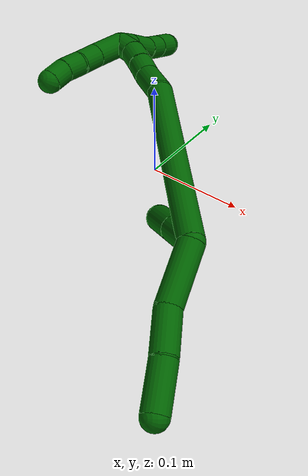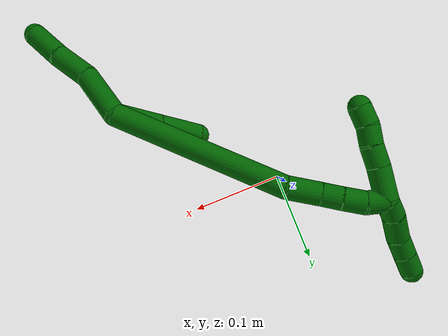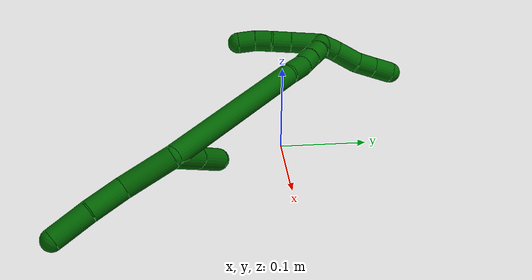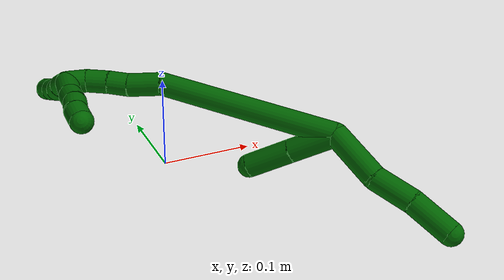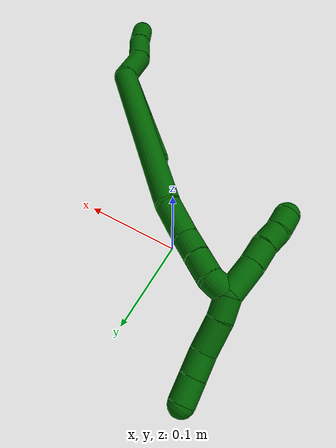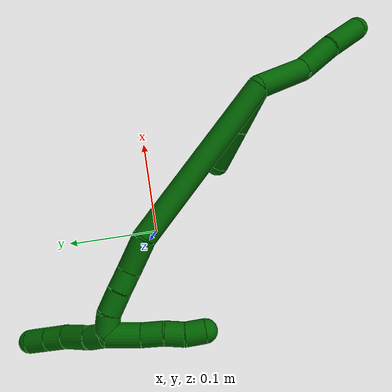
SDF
<sdf version="1.7">
 <world name="default">
  <model name="6">
   <static>0</static>
   <link name="6">
    <collision name="collision-cylinder-e_1_2_8">
     <pose>-0.000811 -0.027356 0.012886 1.13059 -0.026809 -0.017007</pose>
     <geometry><cylinder><radius>0.0125</radius><length>0.060499</length></cylinder></geometry>
     <surface>
      <friction><ode><mu>1.16</mu><mu2>1.16</mu2><slip1>0</slip1><slip2>0</slip2></ode></friction>
      <contact><ode><kp>1e+06</kp><kd>1</kd><max_vel>0</max_vel><min_depth>0.001</min_depth></ode></contact>
     </surface>
    </collision>
    <visual name="visual-cylinder-e_1_2_8">
     <pose>-0.000811 -0.027356 0.012886 1.13059 -0.026809 -0.017007</pose>
     <geometry><cylinder><radius>0.0125</radius><length>0.060499</length></cylinder></geometry>
     <material><ambient>0 0.392157 0.003922 1</ambient></material>
    </visual>
    <collision name="collision-cylinder-e_2_8_9">
     <pose>0.004139 -0.073972 0.034267 1.15535 0.267141 0.174733</pose>
     <geometry><cylinder><radius>0.0125</radius><length>0.04365</length></cylinder></geometry>
     <surface>
      <friction><ode><mu>1.16</mu><mu2>1.16</mu2><slip1>0</slip1><slip2>0</slip2></ode></friction>
      <contact><ode><kp>1e+06</kp><kd>1</kd><max_vel>0</max_vel><min_depth>0.001</min_depth></ode></contact>
     </surface>
    </collision>
    <visual name="visual-cylinder-e_2_8_9">
     <pose>0.004139 -0.073972 0.034267 1.15535 0.267141 0.174733</pose>
     <geometry><cylinder><radius>0.0125</radius><length>0.04365</length></cylinder></geometry>
     <material><ambient>0 0.392157 0.003922 1</ambient></material>
    </visual>
    <collision name="collision-cylinder-e_3_9_6">
     <pose>0.012983 -0.114498 0.050754 1.21137 0.134872 0.093475</pose>
     <geometry><cylinder><radius>0.0125</radius><length>0.04585</length></cylinder></geometry>
     <surface>
      <friction><ode><mu>1.16</mu><mu2>1.16</mu2><slip1>0</slip1><slip2>0</slip2></ode></friction>
      <contact><ode><kp>1e+06</kp><kd>1</kd><max_vel>0</max_vel><min_depth>0.001</min_depth></ode></contact>
     </surface>
    </collision>
    <visual name="visual-cylinder-e_3_9_6">
     <pose>0.012983 -0.114498 0.050754 1.21137 0.134872 0.093475</pose>
     <geometry><cylinder><radius>0.0125</radius><length>0.04585</length></cylinder></geometry>
     <material><ambient>0 0.392157 0.003922 1</ambient></material>
    </visual>
    <collision name="collision-cylinder-e_1_2_10">
     <pose>-0.020807 0.006654 -0.012947 -2.66686 -0.960343 2.27189</pose>
     <geometry><cylinder><radius>0.0125</radius><length>0.050786</length></cylinder></geometry>
     <surface>
      <friction><ode><mu>1.16</mu><mu2>1.16</mu2><slip1>0</slip1><slip2>0</slip2></ode></friction>
      <contact><ode><kp>1e+06</kp><kd>1</kd><max_vel>0</max_vel><min_depth>0.001</min_depth></ode></contact>
     </surface>
    </collision>
    <visual name="visual-cylinder-e_1_2_10">
     <pose>-0.020807 0.006654 -0.012947 -2.66686 -0.960343 2.27189</pose>
     <geometry><cylinder><radius>0.0125</radius><length>0.050786</length></cylinder></geometry>
     <material><ambient>0 0.392157 0.003922 1</ambient></material>
    </visual>
    <collision name="collision-cylinder-e_2_10_5">
     <pose>-0.061802 0.019735 -0.038407 -2.66706 -0.962203 2.27396</pose>
     <geometry><cylinder><radius>0.0125</radius><length>0.049214</length></cylinder></geometry>
     <surface>
      <friction><ode><mu>1.16</mu><mu2>1.16</mu2><slip1>0</slip1><slip2>0</slip2></ode></friction>
      <contact><ode><kp>1e+06</kp><kd>1</kd><max_vel>0</max_vel><min_depth>0.001</min_depth></ode></contact>
     </surface>
    </collision>
    <visual name="visual-cylinder-e_2_10_5">
     <pose>-0.061802 0.019735 -0.038407 -2.66706 -0.962203 2.27396</pose>
     <geometry><cylinder><radius>0.0125</radius><length>0.049214</length></cylinder></geometry>
     <material><ambient>0 0.392157 0.003922 1</ambient></material>
    </visual>
    <collision name="collision-cylinder-e_1_2_11">
     <pose>-0.0504 0.075468 -0.034327 -1.99768 -0.546211 0.82083</pose>
     <geometry><cylinder><radius>0.0125</radius><length>0.19405</length></cylinder></geometry>
     <surface>
      <friction><ode><mu>1.16</mu><mu2>1.16</mu2><slip1>0</slip1><slip2>0</slip2></ode></friction>
      <contact><ode><kp>1e+06</kp><kd>1</kd><max_vel>0</max_vel><min_depth>0.001</min_depth></ode></contact>
     </surface>
    </collision>
    <visual name="visual-cylinder-e_1_2_11">
     <pose>-0.0504 0.075468 -0.034327 -1.99768 -0.546211 0.82083</pose>
     <geometry><cylinder><radius>0.0125</radius><length>0.19405</length></cylinder></geometry>
     <material><ambient>0 0.392157 0.003922 1</ambient></material>
    </visual>
    <collision name="collision-cylinder-e_2_11_12">
     <pose>-0.114734 0.161556 -0.074594 -2.08078 -0.852911 1.31825</pose>
     <geometry><cylinder><radius>0.0125</radius><length>0.037001</length></cylinder></geometry>
     <surface>
      <friction><ode><mu>1.16</mu><mu2>1.16</mu2><slip1>0</slip1><slip2>0</slip2></ode></friction>
      <contact><ode><kp>1e+06</kp><kd>1</kd><max_vel>0</max_vel><min_depth>0.001</min_depth></ode></contact>
     </surface>
    </collision>
    <visual name="visual-cylinder-e_2_11_12">
     <pose>-0.114734 0.161556 -0.074594 -2.08078 -0.852911 1.31825</pose>
     <geometry><cylinder><radius>0.0125</radius><length>0.037001</length></cylinder></geometry>
     <material><ambient>0 0.392157 0.003922 1</ambient></material>
    </visual>
    <collision name="collision-cylinder-e_3_12_13">
     <pose>-0.136129 0.180092 -0.083165 -1.89166 -0.729786 0.973939</pose>
     <geometry><cylinder><radius>0.0125</radius><length>0.02238</length></cylinder></geometry>
     <surface>
      <friction><ode><mu>1.16</mu><mu2>1.16</mu2><slip1>0</slip1><slip2>0</slip2></ode></friction>
      <contact><ode><kp>1e+06</kp><kd>1</kd><max_vel>0</max_vel><min_depth>0.001</min_depth></ode></contact>
     </surface>
    </collision>
    <visual name="visual-cylinder-e_3_12_13">
     <pose>-0.136129 0.180092 -0.083165 -1.89166 -0.729786 0.973939</pose>
     <geometry><cylinder><radius>0.0125</radius><length>0.02238</length></cylinder></geometry>
     <material><ambient>0 0.392157 0.003922 1</ambient></material>
    </visual>
    <collision name="collision-cylinder-e_4_13_14">
     <pose>-0.152327 0.196064 -0.088888 -1.93723 -0.791536 1.09237</pose>
     <geometry><cylinder><radius>0.0125</radius><length>0.024562</length></cylinder></geometry>
     <surface>
      <friction><ode><mu>1.16</mu><mu2>1.16</mu2><slip1>0</slip1><slip2>0</slip2></ode></friction>
      <contact><ode><kp>1e+06</kp><kd>1</kd><max_vel>0</max_vel><min_depth>0.001</min_depth></ode></contact>
     </surface>
    </collision>
    <visual name="visual-cylinder-e_4_13_14">
     <pose>-0.152327 0.196064 -0.088888 -1.93723 -0.791536 1.09237</pose>
     <geometry><cylinder><radius>0.0125</radius><length>0.024562</length></cylinder></geometry>
     <material><ambient>0 0.392157 0.003922 1</ambient></material>
    </visual>
    <collision name="collision-cylinder-e_5_14_1">
     <pose>-0.170476 0.209806 -0.092407 -1.64576 -1.02616 1.09155</pose>
     <geometry><cylinder><radius>0.0125</radius><length>0.022007</length></cylinder></geometry>
     <surface>
      <friction><ode><mu>1.16</mu><mu2>1.16</mu2><slip1>0</slip1><slip2>0</slip2></ode></friction>
      <contact><ode><kp>1e+06</kp><kd>1</kd><max_vel>0</max_vel><min_depth>0.001</min_depth></ode></contact>
     </surface>
    </collision>
    <visual name="visual-cylinder-e_5_14_1">
     <pose>-0.170476 0.209806 -0.092407 -1.64576 -1.02616 1.09155</pose>
     <geometry><cylinder><radius>0.0125</radius><length>0.022007</length></cylinder></geometry>
     <material><ambient>0 0.392157 0.003922 1</ambient></material>
    </visual>
    <collision name="collision-cylinder-e_1_1_15">
     <pose>-0.182825 0.206744 -0.077395 0.515512 -0.164053 -0.043338</pose>
     <geometry><cylinder><radius>0.0125</radius><length>0.035971</length></cylinder></geometry>
     <surface>
      <friction><ode><mu>1.16</mu><mu2>1.16</mu2><slip1>0</slip1><slip2>0</slip2></ode></friction>
      <contact><ode><kp>1e+06</kp><kd>1</kd><max_vel>0</max_vel><min_depth>0.001</min_depth></ode></contact>
     </surface>
    </collision>
    <visual name="visual-cylinder-e_1_1_15">
     <pose>-0.182825 0.206744 -0.077395 0.515512 -0.164053 -0.043338</pose>
     <geometry><cylinder><radius>0.0125</radius><length>0.035971</length></cylinder></geometry>
     <material><ambient>0 0.392157 0.003922 1</ambient></material>
    </visual>
    <collision name="collision-cylinder-e_2_15_16">
     <pose>-0.186483 0.192326 -0.052085 0.521314 -0.063217 -0.016867</pose>
     <geometry><cylinder><radius>0.0125</radius><length>0.022815</length></cylinder></geometry>
     <surface>
      <friction><ode><mu>1.16</mu><mu2>1.16</mu2><slip1>0</slip1><slip2>0</slip2></ode></friction>
      <contact><ode><kp>1e+06</kp><kd>1</kd><max_vel>0</max_vel><min_depth>0.001</min_depth></ode></contact>
     </surface>
    </collision>
    <visual name="visual-cylinder-e_2_15_16">
     <pose>-0.186483 0.192326 -0.052085 0.521314 -0.063217 -0.016867</pose>
     <geometry><cylinder><radius>0.0125</radius><length>0.022815</length></cylinder></geometry>
     <material><ambient>0 0.392157 0.003922 1</ambient></material>
    </visual>
    <collision name="collision-cylinder-e_3_16_17">
     <pose>-0.189696 0.181722 -0.033681 0.524339 -0.247713 -0.06679</pose>
     <geometry><cylinder><radius>0.0125</radius><length>0.020332</length></cylinder></geometry>
     <surface>
      <friction><ode><mu>1.16</mu><mu2>1.16</mu2><slip1>0</slip1><slip2>0</slip2></ode></friction>
      <contact><ode><kp>1e+06</kp><kd>1</kd><max_vel>0</max_vel><min_depth>0.001</min_depth></ode></contact>
     </surface>
    </collision>
    <visual name="visual-cylinder-e_3_16_17">
     <pose>-0.189696 0.181722 -0.033681 0.524339 -0.247713 -0.06679</pose>
     <geometry><cylinder><radius>0.0125</radius><length>0.020332</length></cylinder></geometry>
     <material><ambient>0 0.392157 0.003922 1</ambient></material>
    </visual>
    <collision name="collision-cylinder-e_4_17_4">
     <pose>-0.193215 0.170062 -0.01723 0.704101 -0.098458 -0.036194</pose>
     <geometry><cylinder><radius>0.0125</radius><length>0.020882</length></cylinder></geometry>
     <surface>
      <friction><ode><mu>1.16</mu><mu2>1.16</mu2><slip1>0</slip1><slip2>0</slip2></ode></friction>
      <contact><ode><kp>1e+06</kp><kd>1</kd><max_vel>0</max_vel><min_depth>0.001</min_depth></ode></contact>
     </surface>
    </collision>
    <visual name="visual-cylinder-e_4_17_4">
     <pose>-0.193215 0.170062 -0.01723 0.704101 -0.098458 -0.036194</pose>
     <geometry><cylinder><radius>0.0125</radius><length>0.020882</length></cylinder></geometry>
     <material><ambient>0 0.392157 0.003922 1</ambient></material>
    </visual>
    <collision name="collision-cylinder-e_1_1_18">
     <pose>-0.183041 0.217547 -0.103035 -2.94271 -0.294252 1.95653</pose>
     <geometry><cylinder><radius>0.0125</radius><length>0.021748</length></cylinder></geometry>
     <surface>
      <friction><ode><mu>1.16</mu><mu2>1.16</mu2><slip1>0</slip1><slip2>0</slip2></ode></friction>
      <contact><ode><kp>1e+06</kp><kd>1</kd><max_vel>0</max_vel><min_depth>0.001</min_depth></ode></contact>
     </surface>
    </collision>
    <visual name="visual-cylinder-e_1_1_18">
     <pose>-0.183041 0.217547 -0.103035 -2.94271 -0.294252 1.95653</pose>
     <geometry><cylinder><radius>0.0125</radius><length>0.021748</length></cylinder></geometry>
     <material><ambient>0 0.392157 0.003922 1</ambient></material>
    </visual>
    <collision name="collision-cylinder-e_2_18_19">
     <pose>-0.188748 0.22138 -0.128622 -3.02663 -0.163396 1.91639</pose>
     <geometry><cylinder><radius>0.0125</radius><length>0.031393</length></cylinder></geometry>
     <surface>
      <friction><ode><mu>1.16</mu><mu2>1.16</mu2><slip1>0</slip1><slip2>0</slip2></ode></friction>
      <contact><ode><kp>1e+06</kp><kd>1</kd><max_vel>0</max_vel><min_depth>0.001</min_depth></ode></contact>
     </surface>
    </collision>
    <visual name="visual-cylinder-e_2_18_19">
     <pose>-0.188748 0.22138 -0.128622 -3.02663 -0.163396 1.91639</pose>
     <geometry><cylinder><radius>0.0125</radius><length>0.031393</length></cylinder></geometry>
     <material><ambient>0 0.392157 0.003922 1</ambient></material>
    </visual>
    <collision name="collision-cylinder-e_3_19_20">
     <pose>-0.193305 0.226582 -0.154635 -2.82979 -0.177589 1.03072</pose>
     <geometry><cylinder><radius>0.0125</radius><length>0.022689</length></cylinder></geometry>
     <surface>
      <friction><ode><mu>1.16</mu><mu2>1.16</mu2><slip1>0</slip1><slip2>0</slip2></ode></friction>
      <contact><ode><kp>1e+06</kp><kd>1</kd><max_vel>0</max_vel><min_depth>0.001</min_depth></ode></contact>
     </surface>
    </collision>
    <visual name="visual-cylinder-e_3_19_20">
     <pose>-0.193305 0.226582 -0.154635 -2.82979 -0.177589 1.03072</pose>
     <geometry><cylinder><radius>0.0125</radius><length>0.022689</length></cylinder></geometry>
     <material><ambient>0 0.392157 0.003922 1</ambient></material>
    </visual>
    <collision name="collision-cylinder-e_4_20_3">
     <pose>-0.197377 0.233789 -0.176553 -2.81842 -0.171964 0.972811</pose>
     <geometry><cylinder><radius>0.0125</radius><length>0.02417</length></cylinder></geometry>
     <surface>
      <friction><ode><mu>1.16</mu><mu2>1.16</mu2><slip1>0</slip1><slip2>0</slip2></ode></friction>
      <contact><ode><kp>1e+06</kp><kd>1</kd><max_vel>0</max_vel><min_depth>0.001</min_depth></ode></contact>
     </surface>
    </collision>
    <visual name="visual-cylinder-e_4_20_3">
     <pose>-0.197377 0.233789 -0.176553 -2.81842 -0.171964 0.972811</pose>
     <geometry><cylinder><radius>0.0125</radius><length>0.02417</length></cylinder></geometry>
     <material><ambient>0 0.392157 0.003922 1</ambient></material>
    </visual>
    <collision name="collision-sphere-3">
     <pose>-0.199445 0.23757 -0.187843 0 -0 0</pose>
     <geometry><sphere><radius>0.0125</radius></sphere></geometry>
     <surface>
      <friction><ode><mu>1.16</mu><mu2>1.16</mu2><slip1>0</slip1><slip2>0</slip2></ode></friction>
      <contact><ode><kp>1e+06</kp><kd>1</kd><max_vel>0</max_vel><min_depth>0.001</min_depth></ode></contact>
     </surface>
    </collision>
    <visual name="visual-sphere-3">
     <pose>-0.199445 0.23757 -0.187843 0 -0 0</pose>
     <geometry><sphere><radius>0.0125</radius></sphere></geometry>
     <material><ambient>0 0.392157 0.003922 1</ambient></material>
    </visual>
    <collision name="collision-sphere-20">
     <pose>-0.195309 0.230008 -0.165262 0 -0 0</pose>
     <geometry><sphere><radius>0.0125</radius></sphere></geometry>
     <surface>
      <friction><ode><mu>1.16</mu><mu2>1.16</mu2><slip1>0</slip1><slip2>0</slip2></ode></friction>
      <contact><ode><kp>1e+06</kp><kd>1</kd><max_vel>0</max_vel><min_depth>0.001</min_depth></ode></contact>
     </surface>
    </collision>
    <visual name="visual-sphere-20">
     <pose>-0.195309 0.230008 -0.165262 0 -0 0</pose>
     <geometry><sphere><radius>0.0125</radius></sphere></geometry>
     <material><ambient>0 0.392157 0.003922 1</ambient></material>
    </visual>
    <collision name="collision-sphere-19">
     <pose>-0.191301 0.223157 -0.144007 0 -0 0</pose>
     <geometry><sphere><radius>0.0125</radius></sphere></geometry>
     <surface>
      <friction><ode><mu>1.16</mu><mu2>1.16</mu2><slip1>0</slip1><slip2>0</slip2></ode></friction>
      <contact><ode><kp>1e+06</kp><kd>1</kd><max_vel>0</max_vel><min_depth>0.001</min_depth></ode></contact>
     </surface>
    </collision>
    <visual name="visual-sphere-19">
     <pose>-0.191301 0.223157 -0.144007 0 -0 0</pose>
     <geometry><sphere><radius>0.0125</radius></sphere></geometry>
     <material><ambient>0 0.392157 0.003922 1</ambient></material>
    </visual>
    <collision name="collision-sphere-5">
     <pose>-0.081991 0.026164 -0.050921 0 -0 0</pose>
     <geometry><sphere><radius>0.0125</radius></sphere></geometry>
     <surface>
      <friction><ode><mu>1.16</mu><mu2>1.16</mu2><slip1>0</slip1><slip2>0</slip2></ode></friction>
      <contact><ode><kp>1e+06</kp><kd>1</kd><max_vel>0</max_vel><min_depth>0.001</min_depth></ode></contact>
     </surface>
    </collision>
    <visual name="visual-sphere-5">
     <pose>-0.081991 0.026164 -0.050921 0 -0 0</pose>
     <geometry><sphere><radius>0.0125</radius></sphere></geometry>
     <material><ambient>0 0.392157 0.003922 1</ambient></material>
    </visual>
    <collision name="collision-sphere-10">
     <pose>-0.041613 0.013307 -0.025893 0 -0 0</pose>
     <geometry><sphere><radius>0.0125</radius></sphere></geometry>
     <surface>
      <friction><ode><mu>1.16</mu><mu2>1.16</mu2><slip1>0</slip1><slip2>0</slip2></ode></friction>
      <contact><ode><kp>1e+06</kp><kd>1</kd><max_vel>0</max_vel><min_depth>0.001</min_depth></ode></contact>
     </surface>
    </collision>
    <visual name="visual-sphere-10">
     <pose>-0.041613 0.013307 -0.025893 0 -0 0</pose>
     <geometry><sphere><radius>0.0125</radius></sphere></geometry>
     <material><ambient>0 0.392157 0.003922 1</ambient></material>
    </visual>
    <collision name="collision-sphere-6">
     <pose>0.016066 -0.135763 0.058744 0 -0 0</pose>
     <geometry><sphere><radius>0.0125</radius></sphere></geometry>
     <surface>
      <friction><ode><mu>1.16</mu><mu2>1.16</mu2><slip1>0</slip1><slip2>0</slip2></ode></friction>
      <contact><ode><kp>1e+06</kp><kd>1</kd><max_vel>0</max_vel><min_depth>0.001</min_depth></ode></contact>
     </surface>
    </collision>
    <visual name="visual-sphere-6">
     <pose>0.016066 -0.135763 0.058744 0 -0 0</pose>
     <geometry><sphere><radius>0.0125</radius></sphere></geometry>
     <material><ambient>0 0.392157 0.003922 1</ambient></material>
    </visual>
    <collision name="collision-sphere-9">
     <pose>0.009901 -0.093232 0.042764 0 -0 0</pose>
     <geometry><sphere><radius>0.0125</radius></sphere></geometry>
     <surface>
      <friction><ode><mu>1.16</mu><mu2>1.16</mu2><slip1>0</slip1><slip2>0</slip2></ode></friction>
      <contact><ode><kp>1e+06</kp><kd>1</kd><max_vel>0</max_vel><min_depth>0.001</min_depth></ode></contact>
     </surface>
    </collision>
    <visual name="visual-sphere-9">
     <pose>0.009901 -0.093232 0.042764 0 -0 0</pose>
     <geometry><sphere><radius>0.0125</radius></sphere></geometry>
     <material><ambient>0 0.392157 0.003922 1</ambient></material>
    </visual>
    <collision name="collision-sphere-2">
     <geometry><sphere><radius>0.0125</radius></sphere></geometry>
     <surface>
      <friction><ode><mu>1.16</mu><mu2>1.16</mu2><slip1>0</slip1><slip2>0</slip2></ode></friction>
      <contact><ode><kp>1e+06</kp><kd>1</kd><max_vel>0</max_vel><min_depth>0.001</min_depth></ode></contact>
     </surface>
    </collision>
    <visual name="visual-sphere-2">
     <geometry><sphere><radius>0.0125</radius></sphere></geometry>
     <material><ambient>0 0.392157 0.003922 1</ambient></material>
    </visual>
    <collision name="collision-sphere-8">
     <pose>-0.001622 -0.054712 0.025771 0 -0 0</pose>
     <geometry><sphere><radius>0.0125</radius></sphere></geometry>
     <surface>
      <friction><ode><mu>1.16</mu><mu2>1.16</mu2><slip1>0</slip1><slip2>0</slip2></ode></friction>
      <contact><ode><kp>1e+06</kp><kd>1</kd><max_vel>0</max_vel><min_depth>0.001</min_depth></ode></contact>
     </surface>
    </collision>
    <visual name="visual-sphere-8">
     <pose>-0.001622 -0.054712 0.025771 0 -0 0</pose>
     <geometry><sphere><radius>0.0125</radius></sphere></geometry>
     <material><ambient>0 0.392157 0.003922 1</ambient></material>
    </visual>
    <collision name="collision-sphere-11">
     <pose>-0.1008 0.150935 -0.068653 0 -0 0</pose>
     <geometry><sphere><radius>0.0125</radius></sphere></geometry>
     <surface>
      <friction><ode><mu>1.16</mu><mu2>1.16</mu2><slip1>0</slip1><slip2>0</slip2></ode></friction>
      <contact><ode><kp>1e+06</kp><kd>1</kd><max_vel>0</max_vel><min_depth>0.001</min_depth></ode></contact>
     </surface>
    </collision>
    <visual name="visual-sphere-11">
     <pose>-0.1008 0.150935 -0.068653 0 -0 0</pose>
     <geometry><sphere><radius>0.0125</radius></sphere></geometry>
     <material><ambient>0 0.392157 0.003922 1</ambient></material>
    </visual>
    <collision name="collision-sphere-12">
     <pose>-0.128669 0.172177 -0.080535 0 -0 0</pose>
     <geometry><sphere><radius>0.0125</radius></sphere></geometry>
     <surface>
      <friction><ode><mu>1.16</mu><mu2>1.16</mu2><slip1>0</slip1><slip2>0</slip2></ode></friction>
      <contact><ode><kp>1e+06</kp><kd>1</kd><max_vel>0</max_vel><min_depth>0.001</min_depth></ode></contact>
     </surface>
    </collision>
    <visual name="visual-sphere-12">
     <pose>-0.128669 0.172177 -0.080535 0 -0 0</pose>
     <geometry><sphere><radius>0.0125</radius></sphere></geometry>
     <material><ambient>0 0.392157 0.003922 1</ambient></material>
    </visual>
    <collision name="collision-sphere-13">
     <pose>-0.14359 0.188006 -0.085795 0 -0 0</pose>
     <geometry><sphere><radius>0.0125</radius></sphere></geometry>
     <surface>
      <friction><ode><mu>1.16</mu><mu2>1.16</mu2><slip1>0</slip1><slip2>0</slip2></ode></friction>
      <contact><ode><kp>1e+06</kp><kd>1</kd><max_vel>0</max_vel><min_depth>0.001</min_depth></ode></contact>
     </surface>
    </collision>
    <visual name="visual-sphere-13">
     <pose>-0.14359 0.188006 -0.085795 0 -0 0</pose>
     <geometry><sphere><radius>0.0125</radius></sphere></geometry>
     <material><ambient>0 0.392157 0.003922 1</ambient></material>
    </visual>
    <collision name="collision-sphere-14">
     <pose>-0.161064 0.204121 -0.09198 0 -0 0</pose>
     <geometry><sphere><radius>0.0125</radius></sphere></geometry>
     <surface>
      <friction><ode><mu>1.16</mu><mu2>1.16</mu2><slip1>0</slip1><slip2>0</slip2></ode></friction>
      <contact><ode><kp>1e+06</kp><kd>1</kd><max_vel>0</max_vel><min_depth>0.001</min_depth></ode></contact>
     </surface>
    </collision>
    <visual name="visual-sphere-14">
     <pose>-0.161064 0.204121 -0.09198 0 -0 0</pose>
     <geometry><sphere><radius>0.0125</radius></sphere></geometry>
     <material><ambient>0 0.392157 0.003922 1</ambient></material>
    </visual>
    <collision name="collision-sphere-1">
     <pose>-0.179887 0.215491 -0.092834 0 -0 0</pose>
     <geometry><sphere><radius>0.0125</radius></sphere></geometry>
     <surface>
      <friction><ode><mu>1.16</mu><mu2>1.16</mu2><slip1>0</slip1><slip2>0</slip2></ode></friction>
      <contact><ode><kp>1e+06</kp><kd>1</kd><max_vel>0</max_vel><min_depth>0.001</min_depth></ode></contact>
     </surface>
    </collision>
    <visual name="visual-sphere-1">
     <pose>-0.179887 0.215491 -0.092834 0 -0 0</pose>
     <geometry><sphere><radius>0.0125</radius></sphere></geometry>
     <material><ambient>0 0.392157 0.003922 1</ambient></material>
    </visual>
    <collision name="collision-sphere-18">
     <pose>-0.186195 0.219604 -0.113237 0 -0 0</pose>
     <geometry><sphere><radius>0.0125</radius></sphere></geometry>
     <surface>
      <friction><ode><mu>1.16</mu><mu2>1.16</mu2><slip1>0</slip1><slip2>0</slip2></ode></friction>
      <contact><ode><kp>1e+06</kp><kd>1</kd><max_vel>0</max_vel><min_depth>0.001</min_depth></ode></contact>
     </surface>
    </collision>
    <visual name="visual-sphere-18">
     <pose>-0.186195 0.219604 -0.113237 0 -0 0</pose>
     <geometry><sphere><radius>0.0125</radius></sphere></geometry>
     <material><ambient>0 0.392157 0.003922 1</ambient></material>
    </visual>
    <collision name="collision-sphere-15">
     <pose>-0.185762 0.197996 -0.061957 0 -0 0</pose>
     <geometry><sphere><radius>0.0125</radius></sphere></geometry>
     <surface>
      <friction><ode><mu>1.16</mu><mu2>1.16</mu2><slip1>0</slip1><slip2>0</slip2></ode></friction>
      <contact><ode><kp>1e+06</kp><kd>1</kd><max_vel>0</max_vel><min_depth>0.001</min_depth></ode></contact>
     </surface>
    </collision>
    <visual name="visual-sphere-15">
     <pose>-0.185762 0.197996 -0.061957 0 -0 0</pose>
     <geometry><sphere><radius>0.0125</radius></sphere></geometry>
     <material><ambient>0 0.392157 0.003922 1</ambient></material>
    </visual>
    <collision name="collision-sphere-16">
     <pose>-0.187203 0.186657 -0.042212 0 -0 0</pose>
     <geometry><sphere><radius>0.0125</radius></sphere></geometry>
     <surface>
      <friction><ode><mu>1.16</mu><mu2>1.16</mu2><slip1>0</slip1><slip2>0</slip2></ode></friction>
      <contact><ode><kp>1e+06</kp><kd>1</kd><max_vel>0</max_vel><min_depth>0.001</min_depth></ode></contact>
     </surface>
    </collision>
    <visual name="visual-sphere-16">
     <pose>-0.187203 0.186657 -0.042212 0 -0 0</pose>
     <geometry><sphere><radius>0.0125</radius></sphere></geometry>
     <material><ambient>0 0.392157 0.003922 1</ambient></material>
    </visual>
    <collision name="collision-sphere-17">
     <pose>-0.192188 0.176788 -0.025149 0 -0 0</pose>
     <geometry><sphere><radius>0.0125</radius></sphere></geometry>
     <surface>
      <friction><ode><mu>1.16</mu><mu2>1.16</mu2><slip1>0</slip1><slip2>0</slip2></ode></friction>
      <contact><ode><kp>1e+06</kp><kd>1</kd><max_vel>0</max_vel><min_depth>0.001</min_depth></ode></contact>
     </surface>
    </collision>
    <visual name="visual-sphere-17">
     <pose>-0.192188 0.176788 -0.025149 0 -0 0</pose>
     <geometry><sphere><radius>0.0125</radius></sphere></geometry>
     <material><ambient>0 0.392157 0.003922 1</ambient></material>
    </visual>
    <collision name="collision-sphere-4">
     <pose>-0.194241 0.163336 -0.00931 0 -0 0</pose>
     <geometry><sphere><radius>0.0125</radius></sphere></geometry>
     <surface>
      <friction><ode><mu>1.16</mu><mu2>1.16</mu2><slip1>0</slip1><slip2>0</slip2></ode></friction>
      <contact><ode><kp>1e+06</kp><kd>1</kd><max_vel>0</max_vel><min_depth>0.001</min_depth></ode></contact>
     </surface>
    </collision>
    <visual name="visual-sphere-4">
     <pose>-0.194241 0.163336 -0.00931 0 -0 0</pose>
     <geometry><sphere><radius>0.0125</radius></sphere></geometry>
     <material><ambient>0 0.392157 0.003922 1</ambient></material>
    </visual>
    <inertial>
     <pose>-0.087629 0.089073 -0.043354 0 -0 0</pose>
     <mass>0.75</mass>
     <inertia>
      <ixx>0.000793</ixx>
      <ixy>0</ixy>
      <ixz>0</ixz>
      <iyy>0.000511</iyy>
      <iyz>0</iyz>
      <izz>-0.000112</izz>
     </inertia>
    </inertial>
   </link>
   <pose>0.137638 -0.130614 0.070405 0.923371 -0.482226 0.069222</pose>
  </model>
 </world>
</sdf>
